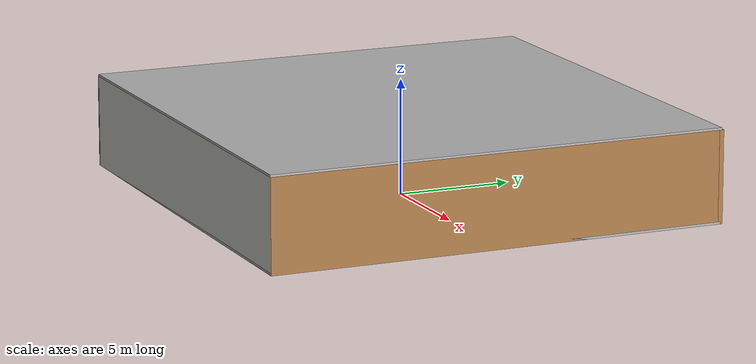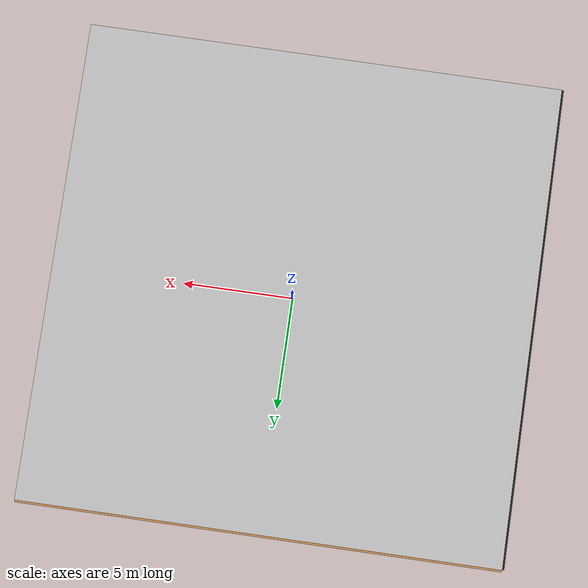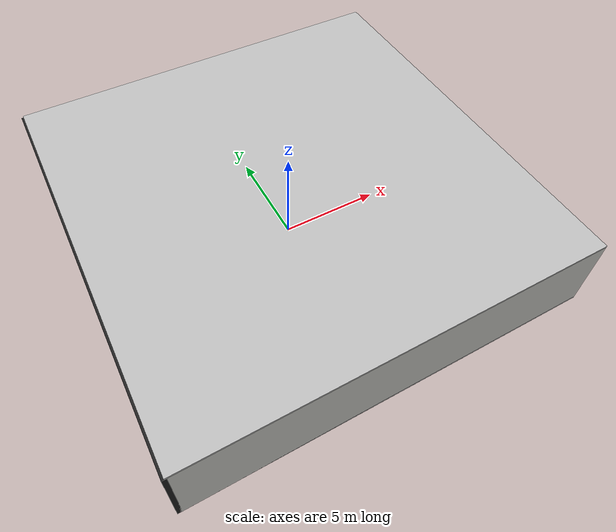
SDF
<sdf version="1.4">
 <world name="default">
  <physics type="ode">
   <max_step_size>0.001</max_step_size>
   <real_time_factor>1</real_time_factor>
   <real_time_update_rate>1000</real_time_update_rate>
   <gravity>0 0 -9.8</gravity>
  </physics>
  <scene><ambient>0.4 0.4 0.4 1</ambient><background>0.7 0.7 0.7 1</background><shadows>1</shadows></scene>
  <model name="Surrounding">
   <static>1</static>
   <link name="Ceiling">
    <collision name="Ceiling_Collision"><geometry><box><size>20 20 0.1</size></box></geometry></collision>
    <visual name="Ceiling_Visual">
     <geometry><box><size>20 20 0.1</size></box></geometry>
     <material>
      <script><uri>file://media/materials/scripts/gazebo.material</uri><name>Gazebo/PioneerBody</name></script>
     </material>
    </visual>
    <pose>0 0 4.05 0 0 0</pose>
   </link>
   <link name="Wall_South">
    <collision name="Wall_South_Collision">
     <geometry><box><size>20 0 4</size></box></geometry>
     <pose>0 0 2 0 -0 0</pose>
    </collision>
    <visual name="Wall_South_Visual">
     <pose>0 0 2 0 -0 0</pose>
     <geometry><box><size>20 0 4</size></box></geometry>
     <material>
      <script><uri>file://media/materials/scripts/gazebo.material</uri><name>Gazebo/CeilingTiled</name></script>
     </material>
    </visual>
    <velocity_decay><linear>0</linear><angular>0</angular></velocity_decay>
    <pose>0 -10 0 0 -0 0</pose>
   </link>
   <link name="Wall_East">
    <collision name="Wall_21_Collision">
     <geometry><box><size>20 0 4</size></box></geometry>
     <pose>0 0 2 0 -0 0</pose>
    </collision>
    <visual name="Wall_21_Visual">
     <pose>0 0 2 0 -0 0</pose>
     <geometry><box><size>20 0 4</size></box></geometry>
     <material>
      <script><uri>file://media/materials/scripts/gazebo.material</uri><name>Gazebo/WoodPallet</name></script>
     </material>
    </visual>
    <velocity_decay><linear>0</linear><angular>0</angular></velocity_decay>
    <pose>10 0 0 0 -0 1.5708</pose>
   </link>
   <link name="Wall_North">
    <collision name="Wall_22_Collision">
     <geometry><box><size>20 0.2 4</size></box></geometry>
     <pose>0 0 2 0 -0 0</pose>
    </collision>
    <visual name="Wall_22_Visual">
     <pose>0 0 2 0 -0 0</pose>
     <geometry><box><size>20 0.2 4</size></box></geometry>
     <material>
      <script><uri>file://media/materials/scripts/gazebo.material</uri><name>Gazebo/Wood</name></script>
     </material>
    </visual>
    <velocity_decay><linear>0</linear><angular>0</angular></velocity_decay>
    <pose>0 10 0 0 -0 0</pose>
   </link>
   <link name="Wall_West">
    <collision name="Wall_23_Collision">
     <geometry><box><size>20 0.2 4</size></box></geometry>
     <pose>0 0 2 0 -0 0</pose>
    </collision>
    <visual name="Wall_23_Visual">
     <pose>0 0 2 0 -0 0</pose>
     <geometry><box><size>20 0.2 4</size></box></geometry>
     <material>
      <script><uri>file://media/materials/scripts/gazebo.material</uri><name>Gazebo/Black</name></script>
     </material>
    </visual>
    <velocity_decay><linear>0</linear><angular>0</angular></velocity_decay>
    <pose>-10 0 0 0 0 -1.5708</pose>
   </link>
   <link name="Ground_link">
    <collision name="collision">
     <pose>0 0 .05 0 -0 0</pose>
     <geometry><box><size>20 20 0.1</size></box></geometry>
    </collision>
    <visual name="visual">
     <pose>0 0 .05 0 -0 0</pose>
     <geometry><box><size>20 20 0.1</size></box></geometry>
     <material>
      <script><uri>file://media/materials/scripts/gazebo.material</uri><name>Gazebo/LightOff</name></script>
     </material>
    </visual>
   </link>
   <static>1</static>
  </model>
  <spherical_coordinates>
   <surface_model>EARTH_WGS84</surface_model>
   <latitude_deg>0</latitude_deg>
   <longitude_deg>0</longitude_deg>
   <elevation>0</elevation>
   <heading_deg>0</heading_deg>
  </spherical_coordinates>
  <light name="lightball_0" type="diffuse">
   <diffuse>0.8 0.8 0.8 1</diffuse>
   <specular>0.2 0.2 0.2 1</specular>
   <attenuation>
    <range>100</range>
    <constant>0.7</constant>
    <linear>0.01</linear>
    <quadratic>0.001</quadratic>
   </attenuation>
   <direction>-0.5 0.1 -0.9</direction>
   <pose>-6.51699960711 -4.1237716827 3.77757138817 0 0 0</pose>
  </light>
  <light name="lightball_1" type="diffuse">
   <diffuse>0.8 0.8 0.8 1</diffuse>
   <specular>0.2 0.2 0.2 1</specular>
   <attenuation>
    <range>100</range>
    <constant>0.7</constant>
    <linear>0.01</linear>
    <quadratic>0.001</quadratic>
   </attenuation>
   <direction>-0.5 0.1 -0.9</direction>
   <pose>-5.2959703992 -8.55348810953 1.82024174606 0 0 0</pose>
  </light>
  <light name="lightball_2" type="diffuse">
   <diffuse>0.8 0.8 0.8 1</diffuse>
   <specular>0.2 0.2 0.2 1</specular>
   <attenuation>
    <range>100</range>
    <constant>0.7</constant>
    <linear>0.01</linear>
    <quadratic>0.001</quadratic>
   </attenuation>
   <direction>-0.5 0.1 -0.9</direction>
   <pose>-6.58054693375 -2.70302678853 3.79379131858 0 0 0</pose>
  </light>
  <light name="lightball_3" type="diffuse">
   <diffuse>0.8 0.8 0.8 1</diffuse>
   <specular>0.2 0.2 0.2 1</specular>
   <attenuation>
    <range>100</range>
    <constant>0.7</constant>
    <linear>0.01</linear>
    <quadratic>0.001</quadratic>
   </attenuation>
   <direction>-0.5 0.1 -0.9</direction>
   <pose>-5.18186497864 -2.88437008677 3.37418045806 0 0 0</pose>
  </light>
  <light name="lightball_4" type="diffuse">
   <diffuse>0.8 0.8 0.8 1</diffuse>
   <specular>0.2 0.2 0.2 1</specular>
   <attenuation>
    <range>100</range>
    <constant>0.7</constant>
    <linear>0.01</linear>
    <quadratic>0.001</quadratic>
   </attenuation>
   <direction>-0.5 0.1 -0.9</direction>
   <pose>7.16056840454 -3.02338951731 1.82391454604 0 0 0</pose>
  </light>
  <light name="lightball_5" type="diffuse">
   <diffuse>0.8 0.8 0.8 1</diffuse>
   <specular>0.2 0.2 0.2 1</specular>
   <attenuation>
    <range>100</range>
    <constant>0.7</constant>
    <linear>0.01</linear>
    <quadratic>0.001</quadratic>
   </attenuation>
   <direction>-0.5 0.1 -0.9</direction>
   <pose>2.73231391985 -1.09601277054 3.39496605385 0 0 0</pose>
  </light>
  <light name="lightball_6" type="diffuse">
   <diffuse>0.8 0.8 0.8 1</diffuse>
   <specular>0.2 0.2 0.2 1</specular>
   <attenuation>
    <range>100</range>
    <constant>0.7</constant>
    <linear>0.01</linear>
    <quadratic>0.001</quadratic>
   </attenuation>
   <direction>-0.5 0.1 -0.9</direction>
   <pose>4.87323099787 1.80814118868 3.00320434718 0 0 0</pose>
  </light>
  <light name="lightball_7" type="diffuse">
   <diffuse>0.8 0.8 0.8 1</diffuse>
   <specular>0.2 0.2 0.2 1</specular>
   <attenuation>
    <range>100</range>
    <constant>0.7</constant>
    <linear>0.01</linear>
    <quadratic>0.001</quadratic>
   </attenuation>
   <direction>-0.5 0.1 -0.9</direction>
   <pose>8.90461283101 7.74807084411 2.08255858912 0 0 0</pose>
  </light>
  <light name="lightball_8" type="diffuse">
   <diffuse>0.8 0.8 0.8 1</diffuse>
   <specular>0.2 0.2 0.2 1</specular>
   <attenuation>
    <range>100</range>
    <constant>0.7</constant>
    <linear>0.01</linear>
    <quadratic>0.001</quadratic>
   </attenuation>
   <direction>-0.5 0.1 -0.9</direction>
   <pose>7.44161072297 -5.9604650978 0.819765880378 0 0 0</pose>
  </light>
  <light name="lightball_9" type="diffuse">
   <diffuse>0.8 0.8 0.8 1</diffuse>
   <specular>0.2 0.2 0.2 1</specular>
   <attenuation>
    <range>100</range>
    <constant>0.7</constant>
    <linear>0.01</linear>
    <quadratic>0.001</quadratic>
   </attenuation>
   <direction>-0.5 0.1 -0.9</direction>
   <pose>0.727260880569 6.69743278381 2.87452368118 0 0 0</pose>
  </light>
  <light name="lightball_10" type="diffuse">
   <diffuse>0.8 0.8 0.8 1</diffuse>
   <specular>0.2 0.2 0.2 1</specular>
   <attenuation>
    <range>100</range>
    <constant>0.7</constant>
    <linear>0.01</linear>
    <quadratic>0.001</quadratic>
   </attenuation>
   <direction>-0.5 0.1 -0.9</direction>
   <pose>8.92764602591 4.19502077502 3.88896335755 0 0 0</pose>
  </light>
  <light name="lightball_11" type="diffuse">
   <diffuse>0.8 0.8 0.8 1</diffuse>
   <specular>0.2 0.2 0.2 1</specular>
   <attenuation>
    <range>100</range>
    <constant>0.7</constant>
    <linear>0.01</linear>
    <quadratic>0.001</quadratic>
   </attenuation>
   <direction>-0.5 0.1 -0.9</direction>
   <pose>-9.28358300201 3.89269141338 1.5247318179 0 0 0</pose>
  </light>
  <light name="lightball_12" type="diffuse">
   <diffuse>0.8 0.8 0.8 1</diffuse>
   <specular>0.2 0.2 0.2 1</specular>
   <attenuation>
    <range>100</range>
    <constant>0.7</constant>
    <linear>0.01</linear>
    <quadratic>0.001</quadratic>
   </attenuation>
   <direction>-0.5 0.1 -0.9</direction>
   <pose>3.21376441164 -0.216359921661 1.07289030301 0 0 0</pose>
  </light>
  <include><uri>model://table</uri><pose>-7.30194816227 -7.04708626755 0 0 0 1.50980475383</pose></include>
  <include>
   <uri>model://textured_shapes</uri>
   <pose>1.10702086133 -3.86722134113 0 0 0 2.39177006386</pose>
  </include>
  <include><uri>model://cabinet</uri><pose>1.71819465626 -0.714937632902 0 0 0 0.646602962258</pose></include>
 </world>
</sdf>

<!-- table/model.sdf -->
<sdf version="1.5">
  <model name="table">
    <static>true</static>
    <link name="link">
      <collision name="surface">
        <pose>0 0 1.0 0 0 0</pose>
        <geometry>
          <box>
            <size>1.5 0.8 0.03</size>
          </box>
        </geometry>
        <surface>
          <friction>
            <ode>
              <mu>0.6</mu>
              <mu2>0.6</mu2>
            </ode>
          </friction>
        </surface>
      </collision>
      <visual name="visual1">
        <pose>0 0 1.0 0 0 0</pose>
        <geometry>
          <box>
            <size>1.5 0.8 0.03</size>
          </box>
        </geometry>
        <material>
          <script>
            <uri>model://media/materials/scripts/gazebo.material</uri>
            <name>Gazebo/Wood</name>
          </script>
        </material>
      </visual>
      <collision name="front_left_leg">
        <pose>0.68 0.38 0.5 0 0 0</pose>
        <geometry>
          <cylinder>
            <radius>0.02</radius>
            <length>1.0</length>
          </cylinder>
        </geometry>
      </collision>
      <visual name="front_left_leg">
        <pose>0.68 0.38 0.5 0 0 0</pose>
        <geometry>
          <cylinder>
            <radius>0.02</radius>
            <length>1.0</length>
          </cylinder>
        </geometry>
        <material>
          <script>
            <uri>model://media/materials/scripts/gazebo.material</uri>
            <name>Gazebo/Grey</name>
          </script>
        </material>
      </visual>
      <collision name="front_right_leg">
        <pose>0.68 -0.38 0.5 0 0 0</pose>
        <geometry>
          <cylinder>
            <radius>0.02</radius>
            <length>1.0</length>
          </cylinder>
        </geometry>
      </collision>
      <visual name="front_right_leg">
        <pose>0.68 -0.38 0.5 0 0 0</pose>
        <geometry>
          <cylinder>
            <radius>0.02</radius>
            <length>1.0</length>
          </cylinder>
        </geometry>
        <material>
          <script>
            <uri>model://media/materials/scripts/gazebo.material</uri>
            <name>Gazebo/Grey</name>
          </script>
        </material>
      </visual>
      <collision name="back_right_leg">
        <pose>-0.68 -0.38 0.5 0 0 0</pose>
        <geometry>
          <cylinder>
            <radius>0.02</radius>
            <length>1.0</length>
          </cylinder>
        </geometry>
      </collision>
      <visual name="back_right_leg">
        <pose>-0.68 -0.38 0.5 0 0 0</pose>
        <geometry>
          <cylinder>
            <radius>0.02</radius>
            <length>1.0</length>
          </cylinder>
        </geometry>
        <material>
          <script>
            <uri>model://media/materials/scripts/gazebo.material</uri>
            <name>Gazebo/Grey</name>
          </script>
        </material>
      </visual>
      <collision name="back_left_leg">
        <pose>-0.68 0.38 0.5 0 0 0</pose>
        <geometry>
          <cylinder>
            <radius>0.02</radius>
            <length>1.0</length>
          </cylinder>
        </geometry>
      </collision>
      <visual name="back_left_leg">
        <pose>-0.68 0.38 0.5 0 0 0</pose>
        <geometry>
          <cylinder>
            <radius>0.02</radius>
            <length>1.0</length>
          </cylinder>
        </geometry>
        <material>
          <script>
            <uri>model://media/materials/scripts/gazebo.material</uri>
            <name>Gazebo/Grey</name>
          </script>
        </material>
      </visual>
    </link>
  </model>
</sdf>

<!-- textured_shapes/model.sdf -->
<sdf version="1.6">
  <model name="textured_shapes">
    <pose>0 0 0.5 0 0 0</pose>
    <link name="box">
      <pose>0 -1.5 0 0 0 0</pose>
      <collision name="collision">
        <geometry>
          <box>
            <size>1 1 1</size>
          </box>
        </geometry>
      </collision>
      <visual name="visual">
        <geometry>
          <box>
            <size>1 1 1</size>
          </box>
        </geometry>
        <material>
          <script>
            <uri>model://../model_source/models/textured_shapes/materials/scripts</uri>
            <uri>model://../model_source/models/textured_shapes/materials/textures</uri>
            <name>TexturedShape/Squares</name>
          </script>
        </material>
      </visual>
    </link>
    <link name="sphere">
      <collision name="collision">
        <geometry>
          <sphere>
            <radius>0.5</radius>
          </sphere>
        </geometry>
      </collision>
      <visual name="visual">
        <geometry>
          <sphere>
            <radius>0.5</radius>
          </sphere>
        </geometry>
        <material>
          <script>
            <uri>model://../model_source/models/textured_shapes/materials/scripts</uri>
            <uri>model://../model_source/models/textured_shapes/materials/textures</uri>
            <name>TexturedShape/Squares</name>
          </script>
        </material>
      </visual>
    </link>
    <link name="cylinder">
      <pose>0 1.5 0 0 0 0</pose>
      <collision name="collision">
        <geometry>
          <cylinder>
            <radius>0.5</radius>
            <length>1</length>
          </cylinder>
        </geometry>
      </collision>
      <visual name="visual">
        <geometry>
          <cylinder>
            <radius>0.5</radius>
            <length>1</length>
          </cylinder>
        </geometry>
        <material>
          <script>
            <uri>model://../model_source/models/textured_shapes/materials/scripts</uri>
            <uri>model://../model_source/models/textured_shapes/materials/textures</uri>
            <name>TexturedShape/Squares</name>
          </script>
        </material>
      </visual>
    </link>
  </model>
</sdf>

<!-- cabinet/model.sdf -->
<sdf version="1.5">
  <model name="cabinet">
    <static>true</static>
    <link name="cabinet_bottom_plate">
      <inertial>
        <pose>0 0 -1 0 0 0</pose>
        <inertia>
          <ixx>2.050000</ixx>
          <ixy>0</ixy>
          <ixz>0</ixz>
          <iyy>2.050000</iyy>
          <iyz>0</iyz>
          <izz>2.050000</izz>
        </inertia>
        <mass>25.000000</mass>
      </inertial>
      <collision name="cabinet_bottom_plate_geom">
        <pose>0 0 0.010000 0 0 0</pose>
        <geometry>
          <box>
            <size>0.450000 0.450000 0.020000</size>
          </box>
        </geometry>
      </collision>
      <visual name="cabinet_bottom_plate_geom_visual">
        <pose>0 0 0.010000 0 0 0</pose>
        <geometry>
          <box>
            <size>0.450000 0.450000 0.020000</size>
          </box>
        </geometry>
        <material>
          <script>
            <uri>model://media/materials/scripts/gazebo.material</uri>
            <name>Gazebo/Wood</name>
          </script>
        </material>
      </visual>
      <collision name="cabinet_bottom_plate_geom_cabinet_back_plate">
        <pose>0.235000 0 0.510000 0 0 0</pose>
        <geometry>
          <box>
            <size>0.020000 0.450000 1.020000</size>
          </box>
        </geometry>
      </collision>
      <visual name="cabinet_bottom_plate_geom_cabinet_back_plate_visual">
        <pose>0.235000 0 0.510000 0 0 0</pose>
        <geometry>
          <box>
            <size>0.020000 0.450000 1.020000</size>
          </box>
        </geometry>
        <material>
          <script>
            <uri>model://media/materials/scripts/gazebo.material</uri>
            <name>Gazebo/Wood</name>
          </script>
        </material>
      </visual>
      <collision name="cabinet_bottom_plate_geom_cabinet_left_plate">
        <pose>0 0.235000 0.510000 0 0 0</pose>
        <geometry>
          <box>
            <size>0.450000 0.020000 1.020000</size>
          </box>
        </geometry>
      </collision>
      <visual name="cabinet_bottom_plate_geom_cabinet_left_plate_visual">
        <pose>0 0.235000 0.510000 0 0 0</pose>
        <geometry>
          <box>
            <size>0.450000 0.020000 1.020000</size>
          </box>
        </geometry>
        <material>
          <script>
            <uri>model://media/materials/scripts/gazebo.material</uri>
            <name>Gazebo/Wood</name>
          </script>
        </material>
      </visual>
      <collision name="cabinet_bottom_plate_geom_cabinet_middle_plate">
        <pose>0 0 0.510000 0 0 0</pose>
        <geometry>
          <box>
            <size>0.450000 0.450000 0.020000</size>
          </box>
        </geometry>
      </collision>
      <visual name="cabinet_bottom_plate_geom_cabinet_middle_plate_visual">
        <pose>0 0 0.510000 0 0 0</pose>
        <geometry>
          <box>
            <size>0.450000 0.450000 0.020000</size>
          </box>
        </geometry>
        <material>
          <script>
            <uri>model://media/materials/scripts/gazebo.material</uri>
            <name>Gazebo/Wood</name>
          </script>
        </material>
      </visual>
      <collision name="cabinet_bottom_plate_geom_cabinet_right_plate">
        <pose>0 -0.235000 0.510000 0 0 0</pose>
        <geometry>
          <box>
            <size>0.450000 0.020000 1.020000</size>
          </box>
        </geometry>
      </collision>
      <visual name="cabinet_bottom_plate_geom_cabinet_right_plate_visual">
        <pose>0 -0.235000 0.510000 0 0 0</pose>
        <geometry>
          <box>
            <size>0.450000 0.020000 1.020000</size>
          </box>
        </geometry>
        <material>
          <script>
            <uri>model://media/materials/scripts/gazebo.material</uri>
            <name>Gazebo/Wood</name>
          </script>
        </material>
      </visual>
      <collision name="cabinet_bottom_plate_geom_cabinet_top_plate">
        <pose>0 0 1.010000 0 0 0</pose>
        <geometry>
          <box>
            <size>0.450000 0.450000 0.020000</size>
          </box>
        </geometry>
      </collision>
      <visual name="cabinet_bottom_plate_geom_cabinet_top_plate_visual">
        <pose>0 0 1.010000 0 0 0</pose>
        <geometry>
          <box>
            <size>0.450000 0.450000 0.020000</size>
          </box>
        </geometry>
        <material>
          <script>
            <uri>model://media/materials/scripts/gazebo.material</uri>
            <name>Gazebo/Wood</name>
          </script>
        </material>
      </visual>
    </link>
  </model>
</sdf>
